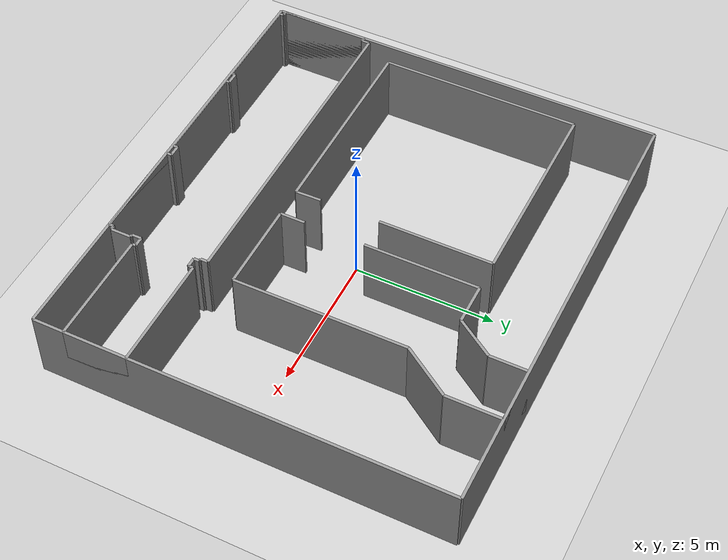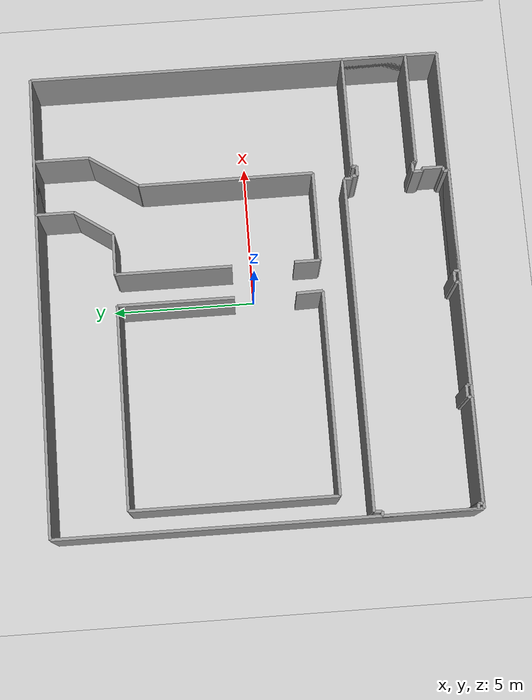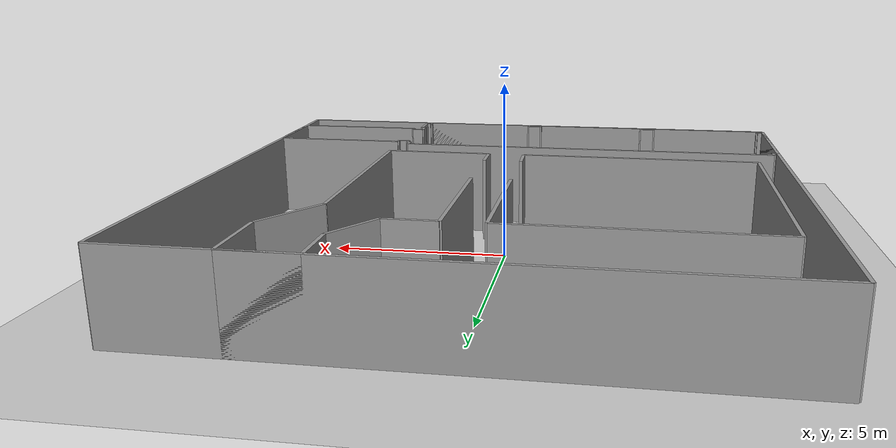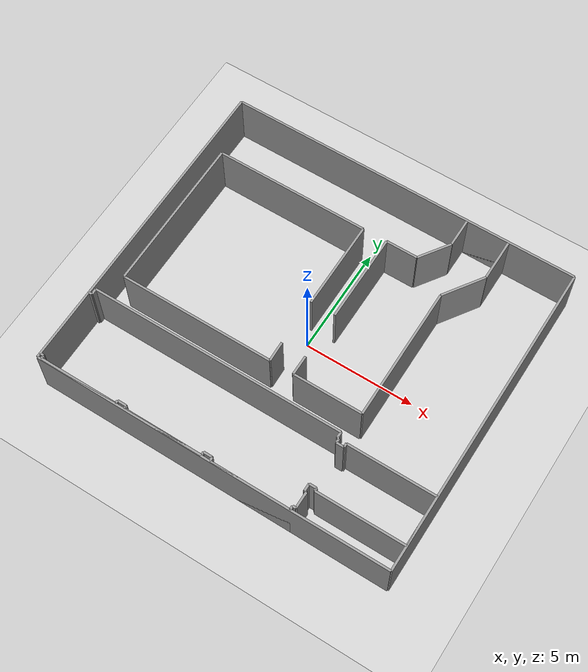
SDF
<sdf version="1.6">
  <world name="default">
    <light name="sun" type="directional">
      <cast_shadows>1</cast_shadows>
      <pose frame="">0 0 10 0 -0 0</pose>
      <diffuse>0.8 0.8 0.8 1</diffuse>
      <specular>0.1 0.1 0.1 1</specular>
      <attenuation>
        <range>1000</range>
        <constant>0.9</constant>
        <linear>0.01</linear>
        <quadratic>0.001</quadratic>
      </attenuation>
      <direction>-0.5 0.5 -1</direction>
    </light>
    <model name="ground_plane">
      <static>1</static>
      <link name="link">
        <collision name="collision">
          <geometry>
            <plane>
              <normal>0 0 1</normal>
              <size>100 100</size>
            </plane>
          </geometry>
          <surface>
            <friction>
              <ode>
                <mu>100</mu>
                <mu2>50</mu2>
              </ode>
              <torsional>
                <ode />
              </torsional>
            </friction>
            <contact>
              <ode />
            </contact>
            <bounce />
          </surface>
          <max_contacts>10</max_contacts>
        </collision>
        <visual name="visual">
          <cast_shadows>0</cast_shadows>
          <geometry>
            <plane>
              <normal>0 0 1</normal>
              <size>100 100</size>
            </plane>
          </geometry>
          <material>
            <script>
              <uri>file://media/materials/scripts/gazebo.material</uri>
              <name>Gazebo/Grey</name>
            </script>
          </material>
        </visual>
        <self_collide>0</self_collide>
        <kinematic>0</kinematic>
        <gravity>1</gravity>
      </link>
    </model>
    <gravity>0 0 -9.8</gravity>
    <magnetic_field>6e-06 2.3e-05 -4.2e-05</magnetic_field>
    <atmosphere type="adiabatic" />
    <physics default="0" name="default_physics" type="ode">
      <max_step_size>0.001</max_step_size>
      <real_time_factor>1</real_time_factor>
      <real_time_update_rate>1000</real_time_update_rate>
    </physics>
    <scene>
      <ambient>0.4 0.4 0.4 1</ambient>
      <background>0.7 0.7 0.7 1</background>
      <shadows>1</shadows>
    </scene>
    <spherical_coordinates>
      <surface_model>EARTH_WGS84</surface_model>
      <latitude_deg>0</latitude_deg>
      <longitude_deg>0</longitude_deg>
      <elevation>0</elevation>
      <heading_deg>0</heading_deg>
    </spherical_coordinates>
  <model name="0510034879_A-40">
		<static>1</static>
		<link name="Wall_0">
			<collision name="Wall_0_Collision">
				<geometry>
					<box>
						<size>7.03436895053 0.1 2.5</size>
					</box>
				</geometry>
				<pose frame="">3.51718447526 0 1.25 0 0 0</pose>
			</collision>
			<visual name="Wall_0_Visual">
				<pose frame="">3.51718447526 0 1.25 0 0 0</pose>
				<geometry>
					<box>
						<size>7.03436895053 0.1 2.5</size>
					</box>
				</geometry>
				<material>
					<script>
						<uri>file://media/materials/scripts/gazebo.material</uri>
						<name>Gazebo/Grey</name>
					</script>
					<ambient>1 1 1 1</ambient>
				</material>
			</visual>
			<pose frame="">7.79511916474 -9.71825711656 0 0 0 3.14159265359</pose>
		</link>
		<link name="Wall_1">
			<collision name="Wall_1_Collision">
				<geometry>
					<box>
						<size>7.07308558916 0.1 2.5</size>
					</box>
				</geometry>
				<pose frame="">3.53654279458 0 1.25 0 0 0</pose>
			</collision>
			<visual name="Wall_1_Visual">
				<pose frame="">3.53654279458 0 1.25 0 0 0</pose>
				<geometry>
					<box>
						<size>7.07308558916 0.1 2.5</size>
					</box>
				</geometry>
				<material>
					<script>
						<uri>file://media/materials/scripts/gazebo.material</uri>
						<name>Gazebo/Grey</name>
					</script>
					<ambient>1 1 1 1</ambient>
				</material>
			</visual>
			<pose frame="">0.760750214211 -9.71825711656 0 0 0 1.57079632679</pose>
		</link>
		<link name="Wall_2">
			<collision name="Wall_2_Collision">
				<geometry>
					<box>
						<size>7.01012344895 0.1 2.5</size>
					</box>
				</geometry>
				<pose frame="">3.50506172448 0 1.25 0 0 0</pose>
			</collision>
			<visual name="Wall_2_Visual">
				<pose frame="">3.50506172448 0 1.25 0 0 0</pose>
				<geometry>
					<box>
						<size>7.01012344895 0.1 2.5</size>
					</box>
				</geometry>
				<material>
					<script>
						<uri>file://media/materials/scripts/gazebo.material</uri>
						<name>Gazebo/Grey</name>
					</script>
					<ambient>1 1 1 1</ambient>
				</material>
			</visual>
			<pose frame="">0.760750214211 -2.6451715274 0 0 0 0.0</pose>
		</link>
		<link name="Wall_3">
			<collision name="Wall_3_Collision">
				<geometry>
					<box>
						<size>4.03414680588 0.1 2.5</size>
					</box>
				</geometry>
				<pose frame="">2.01707340294 0 1.25 0 0 0</pose>
			</collision>
			<visual name="Wall_3_Visual">
				<pose frame="">2.01707340294 0 1.25 0 0 0</pose>
				<geometry>
					<box>
						<size>4.03414680588 0.1 2.5</size>
					</box>
				</geometry>
				<material>
					<script>
						<uri>file://media/materials/scripts/gazebo.material</uri>
						<name>Gazebo/Grey</name>
					</script>
					<ambient>1 1 1 1</ambient>
				</material>
			</visual>
			<pose frame="">7.77087366317 -2.6451715274 0 0 0 -1.57079632679</pose>
		</link>
		<link name="Wall_4">
			<collision name="Wall_4_Collision">
				<geometry>
					<box>
						<size>0.906166819998 0.1 2.5</size>
					</box>
				</geometry>
				<pose frame="">0.453083409999 0 1.25 0 0 0</pose>
			</collision>
			<visual name="Wall_4_Visual">
				<pose frame="">0.453083409999 0 1.25 0 0 0</pose>
				<geometry>
					<box>
						<size>0.906166819998 0.1 2.5</size>
					</box>
				</geometry>
				<material>
					<script>
						<uri>file://media/materials/scripts/gazebo.material</uri>
						<name>Gazebo/Grey</name>
					</script>
					<ambient>1 1 1 1</ambient>
				</material>
			</visual>
			<pose frame="">7.77087366317 -8.81241471232 0 0 0 -1.54403702065</pose>
		</link>
		<link name="Wall_5">
			<collision name="Wall_5_Collision">
				<geometry>
					<box>
						<size>3.14861476945 0.1 2.5</size>
					</box>
				</geometry>
				<pose frame="">1.57430738472 0 1.25 0 0 0</pose>
			</collision>
			<visual name="Wall_5_Visual">
				<pose frame="">1.57430738472 0 1.25 0 0 0</pose>
				<geometry>
					<box>
						<size>3.14861476945 0.1 2.5</size>
					</box>
				</geometry>
				<material>
					<script>
						<uri>file://media/materials/scripts/gazebo.material</uri>
						<name>Gazebo/Grey</name>
					</script>
					<ambient>1 1 1 1</ambient>
				</material>
			</visual>
			<pose frame="">12.0308463711 -9.71368728381 0 0 0 3.14159265359</pose>
		</link>
		<link name="Wall_6">
			<collision name="Wall_6_Collision">
				<geometry>
					<box>
						<size>0.886928374219 0.1 2.5</size>
					</box>
				</geometry>
				<pose frame="">0.443464187109 0 1.25 0 0 0</pose>
			</collision>
			<visual name="Wall_6_Visual">
				<pose frame="">0.443464187109 0 1.25 0 0 0</pose>
				<geometry>
					<box>
						<size>0.886928374219 0.1 2.5</size>
					</box>
				</geometry>
				<material>
					<script>
						<uri>file://media/materials/scripts/gazebo.material</uri>
						<name>Gazebo/Grey</name>
					</script>
					<ambient>1 1 1 1</ambient>
				</material>
			</visual>
			<pose frame="">8.88223160166 -9.71368728381 0 0 0 1.57079632679</pose>
		</link>
		<link name="Wall_7">
			<collision name="Wall_7_Collision">
				<geometry>
					<box>
						<size>4.03630478246 0.1 2.5</size>
					</box>
				</geometry>
				<pose frame="">2.01815239123 0 1.25 0 0 0</pose>
			</collision>
			<visual name="Wall_7_Visual">
				<pose frame="">2.01815239123 0 1.25 0 0 0</pose>
				<geometry>
					<box>
						<size>4.03630478246 0.1 2.5</size>
					</box>
				</geometry>
				<material>
					<script>
						<uri>file://media/materials/scripts/gazebo.material</uri>
						<name>Gazebo/Grey</name>
					</script>
					<ambient>1 1 1 1</ambient>
				</material>
			</visual>
			<pose frame="">8.88223160166 -6.66573577481 0 0 0 1.57079632679</pose>
		</link>
		<link name="Wall_8">
			<collision name="Wall_8_Collision">
				<geometry>
					<box>
						<size>1.43340420805 0.1 2.5</size>
					</box>
				</geometry>
				<pose frame="">0.716702104027 0 1.25 0 0 0</pose>
			</collision>
			<visual name="Wall_8_Visual">
				<pose frame="">0.716702104027 0 1.25 0 0 0</pose>
				<geometry>
					<box>
						<size>1.43340420805 0.1 2.5</size>
					</box>
				</geometry>
				<material>
					<script>
						<uri>file://media/materials/scripts/gazebo.material</uri>
						<name>Gazebo/Grey</name>
					</script>
					<ambient>1 1 1 1</ambient>
				</material>
			</visual>
			<pose frame="">8.88223160166 -2.62943099235 0 0 0 0.0</pose>
		</link>
		<link name="Wall_9">
			<collision name="Wall_9_Collision">
				<geometry>
					<box>
						<size>1.57389491452 0.1 2.5</size>
					</box>
				</geometry>
				<pose frame="">0.786947457261 0 1.25 0 0 0</pose>
			</collision>
			<visual name="Wall_9_Visual">
				<pose frame="">0.786947457261 0 1.25 0 0 0</pose>
				<geometry>
					<box>
						<size>1.57389491452 0.1 2.5</size>
					</box>
				</geometry>
				<material>
					<script>
						<uri>file://media/materials/scripts/gazebo.material</uri>
						<name>Gazebo/Grey</name>
					</script>
					<ambient>1 1 1 1</ambient>
				</material>
			</visual>
			<pose frame="">10.3156358097 -2.62943099235 0 0 0 0.97507627362</pose>
		</link>
		<link name="Wall_10">
			<collision name="Wall_10_Collision">
				<geometry>
					<box>
						<size>1.32664783726 0.1 2.5</size>
					</box>
				</geometry>
				<pose frame="">0.663323918632 0 1.25 0 0 0</pose>
			</collision>
			<visual name="Wall_10_Visual">
				<pose frame="">0.663323918632 0 1.25 0 0 0</pose>
				<geometry>
					<box>
						<size>1.32664783726 0.1 2.5</size>
					</box>
				</geometry>
				<material>
					<script>
						<uri>file://media/materials/scripts/gazebo.material</uri>
						<name>Gazebo/Grey</name>
					</script>
					<ambient>1 1 1 1</ambient>
				</material>
			</visual>
			<pose frame="">11.19875599 -1.32664783726 0 0 0 1.57079632679</pose>
		</link>
		<link name="Wall_11">
			<collision name="Wall_11_Collision">
				<geometry>
					<box>
						<size>1.94217892165 0.1 2.5</size>
					</box>
				</geometry>
				<pose frame="">0.971089460823 0 1.25 0 0 0</pose>
			</collision>
			<visual name="Wall_11_Visual">
				<pose frame="">0.971089460823 0 1.25 0 0 0</pose>
				<geometry>
					<box>
						<size>1.94217892165 0.1 2.5</size>
					</box>
				</geometry>
				<material>
					<script>
						<uri>file://media/materials/scripts/gazebo.material</uri>
						<name>Gazebo/Grey</name>
					</script>
					<ambient>1 1 1 1</ambient>
				</material>
			</visual>
			<pose frame="">11.19875599 -0.0 0 0 0 0.0</pose>
		</link>
		<link name="Wall_12">
			<collision name="Wall_12_Collision">
				<geometry>
					<box>
						<size>1.92961188157 0.1 2.5</size>
					</box>
				</geometry>
				<pose frame="">0.964805940783 0 1.25 0 0 0</pose>
			</collision>
			<visual name="Wall_12_Visual">
				<pose frame="">0.964805940783 0 1.25 0 0 0</pose>
				<geometry>
					<box>
						<size>1.92961188157 0.1 2.5</size>
					</box>
				</geometry>
				<material>
					<script>
						<uri>file://media/materials/scripts/gazebo.material</uri>
						<name>Gazebo/Grey</name>
					</script>
					<ambient>1 1 1 1</ambient>
				</material>
			</visual>
			<pose frame="">13.1409349116 -0.0 0 0 0 -1.57079632679</pose>
		</link>
		<link name="Wall_13">
			<collision name="Wall_13_Collision">
				<geometry>
					<box>
						<size>2.03812919018 0.1 2.5</size>
					</box>
				</geometry>
				<pose frame="">1.01906459509 0 1.25 0 0 0</pose>
			</collision>
			<visual name="Wall_13_Visual">
				<pose frame="">1.01906459509 0 1.25 0 0 0</pose>
				<geometry>
					<box>
						<size>2.03812919018 0.1 2.5</size>
					</box>
				</geometry>
				<material>
					<script>
						<uri>file://media/materials/scripts/gazebo.material</uri>
						<name>Gazebo/Grey</name>
					</script>
					<ambient>1 1 1 1</ambient>
				</material>
			</visual>
			<pose frame="">13.1409349116 -1.92961188157 0 0 0 -2.1618564437</pose>
		</link>
		<link name="Wall_14">
			<collision name="Wall_14_Collision">
				<geometry>
					<box>
						<size>6.09176797147 0.1 2.5</size>
					</box>
				</geometry>
				<pose frame="">3.04588398573 0 1.25 0 0 0</pose>
			</collision>
			<visual name="Wall_14_Visual">
				<pose frame="">3.04588398573 0 1.25 0 0 0</pose>
				<geometry>
					<box>
						<size>6.09176797147 0.1 2.5</size>
					</box>
				</geometry>
				<material>
					<script>
						<uri>file://media/materials/scripts/gazebo.material</uri>
						<name>Gazebo/Grey</name>
					</script>
					<ambient>1 1 1 1</ambient>
				</material>
			</visual>
			<pose frame="">12.0052045318 -3.62197327917 0 0 0 -1.56658705369</pose>
		</link>
		<link name="Wall_15">
			<collision name="Wall_15_Collision">
				<geometry>
					<box>
						<size>3.60521722573 0.1 2.5</size>
					</box>
				</geometry>
				<pose frame="">1.80260861287 0 1.25 0 0 0</pose>
			</collision>
			<visual name="Wall_15_Visual">
				<pose frame="">1.80260861287 0 1.25 0 0 0</pose>
				<geometry>
					<box>
						<size>3.60521722573 0.1 2.5</size>
					</box>
				</geometry>
				<material>
					<script>
						<uri>file://media/materials/scripts/gazebo.material</uri>
						<name>Gazebo/Grey</name>
					</script>
					<ambient>1 1 1 1</ambient>
				</material>
			</visual>
			<pose frame="">11.7783631113 -14.4660594713 0 0 0 3.14159265359</pose>
		</link>
		<link name="Wall_16">
			<collision name="Wall_16_Collision">
				<geometry>
					<box>
						<size>0.18304718987 0.1 2.5</size>
					</box>
				</geometry>
				<pose frame="">0.0915235949351 0 1.25 0 0 0</pose>
			</collision>
			<visual name="Wall_16_Visual">
				<pose frame="">0.0915235949351 0 1.25 0 0 0</pose>
				<geometry>
					<box>
						<size>0.18304718987 0.1 2.5</size>
					</box>
				</geometry>
				<material>
					<script>
						<uri>file://media/materials/scripts/gazebo.material</uri>
						<name>Gazebo/Grey</name>
					</script>
					<ambient>1 1 1 1</ambient>
				</material>
			</visual>
			<pose frame="">8.17314588556 -14.4660594713 0 0 0 1.57079632679</pose>
		</link>
		<link name="Wall_17">
			<collision name="Wall_17_Collision">
				<geometry>
					<box>
						<size>0.405572657167 0.1 2.5</size>
					</box>
				</geometry>
				<pose frame="">0.202786328584 0 1.25 0 0 0</pose>
			</collision>
			<visual name="Wall_17_Visual">
				<pose frame="">0.202786328584 0 1.25 0 0 0</pose>
				<geometry>
					<box>
						<size>0.405572657167 0.1 2.5</size>
					</box>
				</geometry>
				<material>
					<script>
						<uri>file://media/materials/scripts/gazebo.material</uri>
						<name>Gazebo/Grey</name>
					</script>
					<ambient>1 1 1 1</ambient>
				</material>
			</visual>
			<pose frame="">8.17314588556 -14.2830122814 0 0 0 3.14159265359</pose>
		</link>
		<link name="Wall_18">
			<collision name="Wall_18_Collision">
				<geometry>
					<box>
						<size>0.157405350513 0.1 2.5</size>
					</box>
				</geometry>
				<pose frame="">0.0787026752563 0 1.25 0 0 0</pose>
			</collision>
			<visual name="Wall_18_Visual">
				<pose frame="">0.0787026752563 0 1.25 0 0 0</pose>
				<geometry>
					<box>
						<size>0.157405350513 0.1 2.5</size>
					</box>
				</geometry>
				<material>
					<script>
						<uri>file://media/materials/scripts/gazebo.material</uri>
						<name>Gazebo/Grey</name>
					</script>
					<ambient>1 1 1 1</ambient>
				</material>
			</visual>
			<pose frame="">7.7675732284 -14.2830122814 0 0 0 -1.57079632679</pose>
		</link>
		<link name="Wall_19">
			<collision name="Wall_19_Collision">
				<geometry>
					<box>
						<size>3.58389133953 0.1 2.5</size>
					</box>
				</geometry>
				<pose frame="">1.79194566977 0 1.25 0 0 0</pose>
			</collision>
			<visual name="Wall_19_Visual">
				<pose frame="">1.79194566977 0 1.25 0 0 0</pose>
				<geometry>
					<box>
						<size>3.58389133953 0.1 2.5</size>
					</box>
				</geometry>
				<material>
					<script>
						<uri>file://media/materials/scripts/gazebo.material</uri>
						<name>Gazebo/Grey</name>
					</script>
					<ambient>1 1 1 1</ambient>
				</material>
			</visual>
			<pose frame="">7.7675732284 -14.4404176319 0 0 0 3.14159265359</pose>
		</link>
		<link name="Wall_20">
			<collision name="Wall_20_Collision">
				<geometry>
					<box>
						<size>0.138364380692 0.1 2.5</size>
					</box>
				</geometry>
				<pose frame="">0.0691821903462 0 1.25 0 0 0</pose>
			</collision>
			<visual name="Wall_20_Visual">
				<pose frame="">0.0691821903462 0 1.25 0 0 0</pose>
				<geometry>
					<box>
						<size>0.138364380692 0.1 2.5</size>
					</box>
				</geometry>
				<material>
					<script>
						<uri>file://media/materials/scripts/gazebo.material</uri>
						<name>Gazebo/Grey</name>
					</script>
					<ambient>1 1 1 1</ambient>
				</material>
			</visual>
			<pose frame="">4.18368188886 -14.4404176319 0 0 0 1.57079632679</pose>
		</link>
		<link name="Wall_21">
			<collision name="Wall_21_Collision">
				<geometry>
					<box>
						<size>0.424740566786 0.1 2.5</size>
					</box>
				</geometry>
				<pose frame="">0.212370283393 0 1.25 0 0 0</pose>
			</collision>
			<visual name="Wall_21_Visual">
				<pose frame="">0.212370283393 0 1.25 0 0 0</pose>
				<geometry>
					<box>
						<size>0.424740566786 0.1 2.5</size>
					</box>
				</geometry>
				<material>
					<script>
						<uri>file://media/materials/scripts/gazebo.material</uri>
						<name>Gazebo/Grey</name>
					</script>
					<ambient>1 1 1 1</ambient>
				</material>
			</visual>
			<pose frame="">4.18368188886 -14.3020532512 0 0 0 3.14159265359</pose>
		</link>
		<link name="Wall_22">
			<collision name="Wall_22_Collision">
				<geometry>
					<box>
						<size>0.138364380692 0.1 2.5</size>
					</box>
				</geometry>
				<pose frame="">0.0691821903462 0 1.25 0 0 0</pose>
			</collision>
			<visual name="Wall_22_Visual">
				<pose frame="">0.0691821903462 0 1.25 0 0 0</pose>
				<geometry>
					<box>
						<size>0.138364380692 0.1 2.5</size>
					</box>
				</geometry>
				<material>
					<script>
						<uri>file://media/materials/scripts/gazebo.material</uri>
						<name>Gazebo/Grey</name>
					</script>
					<ambient>1 1 1 1</ambient>
				</material>
			</visual>
			<pose frame="">3.75894132208 -14.3020532512 0 0 0 -1.57079632679</pose>
		</link>
		<link name="Wall_23">
			<collision name="Wall_23_Collision">
				<geometry>
					<box>
						<size>3.58059090476 0.1 2.5</size>
					</box>
				</geometry>
				<pose frame="">1.79029545238 0 1.25 0 0 0</pose>
			</collision>
			<visual name="Wall_23_Visual">
				<pose frame="">1.79029545238 0 1.25 0 0 0</pose>
				<geometry>
					<box>
						<size>3.58059090476 0.1 2.5</size>
					</box>
				</geometry>
				<material>
					<script>
						<uri>file://media/materials/scripts/gazebo.material</uri>
						<name>Gazebo/Grey</name>
					</script>
					<ambient>1 1 1 1</ambient>
				</material>
			</visual>
			<pose frame="">3.75894132208 -14.4404176319 0 0 0 3.14159265359</pose>
		</link>
		<link name="Wall_24">
			<collision name="Wall_24_Collision">
				<geometry>
					<box>
						<size>0.152200818762 0.1 2.5</size>
					</box>
				</geometry>
				<pose frame="">0.0761004093808 0 1.25 0 0 0</pose>
			</collision>
			<visual name="Wall_24_Visual">
				<pose frame="">0.0761004093808 0 1.25 0 0 0</pose>
				<geometry>
					<box>
						<size>0.152200818762 0.1 2.5</size>
					</box>
				</geometry>
				<material>
					<script>
						<uri>file://media/materials/scripts/gazebo.material</uri>
						<name>Gazebo/Grey</name>
					</script>
					<ambient>1 1 1 1</ambient>
				</material>
			</visual>
			<pose frame="">0.178350417315 -14.4404176319 0 0 0 1.57079632679</pose>
		</link>
		<link name="Wall_25">
			<collision name="Wall_25_Collision">
				<geometry>
					<box>
						<size>0.178350417315 0.1 2.5</size>
					</box>
				</geometry>
				<pose frame="">0.0891752086573 0 1.25 0 0 0</pose>
			</collision>
			<visual name="Wall_25_Visual">
				<pose frame="">0.0891752086573 0 1.25 0 0 0</pose>
				<geometry>
					<box>
						<size>0.178350417315 0.1 2.5</size>
					</box>
				</geometry>
				<material>
					<script>
						<uri>file://media/materials/scripts/gazebo.material</uri>
						<name>Gazebo/Grey</name>
					</script>
					<ambient>1 1 1 1</ambient>
				</material>
			</visual>
			<pose frame="">0.178350417315 -14.2882168132 0 0 0 3.14159265359</pose>
		</link>
		<link name="Wall_26">
			<collision name="Wall_26_Collision">
				<geometry>
					<box>
						<size>3.2169083812 0.1 2.5</size>
					</box>
				</geometry>
				<pose frame="">1.6084541906 0 1.25 0 0 0</pose>
			</collision>
			<visual name="Wall_26_Visual">
				<pose frame="">1.6084541906 0 1.25 0 0 0</pose>
				<geometry>
					<box>
						<size>3.2169083812 0.1 2.5</size>
					</box>
				</geometry>
				<material>
					<script>
						<uri>file://media/materials/scripts/gazebo.material</uri>
						<name>Gazebo/Grey</name>
					</script>
					<ambient>1 1 1 1</ambient>
				</material>
			</visual>
			<pose frame="">0.0 -14.2882168132 0 0 0 1.57079632679</pose>
		</link>
		<link name="Wall_27">
			<collision name="Wall_27_Collision">
				<geometry>
					<box>
						<size>0.151185300371 0.1 2.5</size>
					</box>
				</geometry>
				<pose frame="">0.0755926501856 0 1.25 0 0 0</pose>
			</collision>
			<visual name="Wall_27_Visual">
				<pose frame="">0.0755926501856 0 1.25 0 0 0</pose>
				<geometry>
					<box>
						<size>0.151185300371 0.1 2.5</size>
					</box>
				</geometry>
				<material>
					<script>
						<uri>file://media/materials/scripts/gazebo.material</uri>
						<name>Gazebo/Grey</name>
					</script>
					<ambient>1 1 1 1</ambient>
				</material>
			</visual>
			<pose frame="">0.0 -11.071308432 0 0 0 0.0</pose>
		</link>
		<link name="Wall_28">
			<collision name="Wall_28_Collision">
				<geometry>
					<box>
						<size>0.27304750722 0.1 2.5</size>
					</box>
				</geometry>
				<pose frame="">0.13652375361 0 1.25 0 0 0</pose>
			</collision>
			<visual name="Wall_28_Visual">
				<pose frame="">0.13652375361 0 1.25 0 0 0</pose>
				<geometry>
					<box>
						<size>0.27304750722 0.1 2.5</size>
					</box>
				</geometry>
				<material>
					<script>
						<uri>file://media/materials/scripts/gazebo.material</uri>
						<name>Gazebo/Grey</name>
					</script>
					<ambient>1 1 1 1</ambient>
				</material>
			</visual>
			<pose frame="">0.151185300371 -11.071308432 0 0 0 1.57079632679</pose>
		</link>
		<link name="Wall_29">
			<collision name="Wall_29_Collision">
				<geometry>
					<box>
						<size>11.5923963061 0.1 2.5</size>
					</box>
				</geometry>
				<pose frame="">5.79619815303 0 1.25 0 0 0</pose>
			</collision>
			<visual name="Wall_29_Visual">
				<pose frame="">5.79619815303 0 1.25 0 0 0</pose>
				<geometry>
					<box>
						<size>11.5923963061 0.1 2.5</size>
					</box>
				</geometry>
				<material>
					<script>
						<uri>file://media/materials/scripts/gazebo.material</uri>
						<name>Gazebo/Grey</name>
					</script>
					<ambient>1 1 1 1</ambient>
				</material>
			</visual>
			<pose frame="">0.151185300371 -10.7982609248 0 0 0 0.0</pose>
		</link>
		<link name="Wall_30">
			<collision name="Wall_30_Collision">
				<geometry>
					<box>
						<size>0.26670051728 0.1 2.5</size>
					</box>
				</geometry>
				<pose frame="">0.13335025864 0 1.25 0 0 0</pose>
			</collision>
			<visual name="Wall_30_Visual">
				<pose frame="">0.13335025864 0 1.25 0 0 0</pose>
				<geometry>
					<box>
						<size>0.26670051728 0.1 2.5</size>
					</box>
				</geometry>
				<material>
					<script>
						<uri>file://media/materials/scripts/gazebo.material</uri>
						<name>Gazebo/Grey</name>
					</script>
					<ambient>1 1 1 1</ambient>
				</material>
			</visual>
			<pose frame="">11.7435816064 -10.7982609248 0 0 0 -1.57079632679</pose>
		</link>
		<link name="Wall_31">
			<collision name="Wall_31_Collision">
				<geometry>
					<box>
						<size>0.0816222906287 0.1 2.5</size>
					</box>
				</geometry>
				<pose frame="">0.0408111453143 0 1.25 0 0 0</pose>
			</collision>
			<visual name="Wall_31_Visual">
				<pose frame="">0.0408111453143 0 1.25 0 0 0</pose>
				<geometry>
					<box>
						<size>0.0816222906287 0.1 2.5</size>
					</box>
				</geometry>
				<material>
					<script>
						<uri>file://media/materials/scripts/gazebo.material</uri>
						<name>Gazebo/Grey</name>
					</script>
					<ambient>1 1 1 1</ambient>
				</material>
			</visual>
			<pose frame="">11.7435816064 -11.064961442 0 0 0 0.0</pose>
		</link>
		<link name="Wall_32">
			<collision name="Wall_32_Collision">
				<geometry>
					<box>
						<size>0.197264447336 0.1 2.5</size>
					</box>
				</geometry>
				<pose frame="">0.0986322236679 0 1.25 0 0 0</pose>
			</collision>
			<visual name="Wall_32_Visual">
				<pose frame="">0.0986322236679 0 1.25 0 0 0</pose>
				<geometry>
					<box>
						<size>0.197264447336 0.1 2.5</size>
					</box>
				</geometry>
				<material>
					<script>
						<uri>file://media/materials/scripts/gazebo.material</uri>
						<name>Gazebo/Grey</name>
					</script>
					<ambient>1 1 1 1</ambient>
				</material>
			</visual>
			<pose frame="">11.8252038971 -11.064961442 0 0 0 -1.57079632679</pose>
		</link>
		<link name="Wall_33">
			<collision name="Wall_33_Collision">
				<geometry>
					<box>
						<size>0.337405985212 0.1 2.5</size>
					</box>
				</geometry>
				<pose frame="">0.168702992606 0 1.25 0 0 0</pose>
			</collision>
			<visual name="Wall_33_Visual">
				<pose frame="">0.168702992606 0 1.25 0 0 0</pose>
				<geometry>
					<box>
						<size>0.337405985212 0.1 2.5</size>
					</box>
				</geometry>
				<material>
					<script>
						<uri>file://media/materials/scripts/gazebo.material</uri>
						<name>Gazebo/Grey</name>
					</script>
					<ambient>1 1 1 1</ambient>
				</material>
			</visual>
			<pose frame="">11.8252038971 -11.2622258894 0 0 0 0.0</pose>
		</link>
		<link name="Wall_34">
			<collision name="Wall_34_Collision">
				<geometry>
					<box>
						<size>0.171749547777 0.1 2.5</size>
					</box>
				</geometry>
				<pose frame="">0.0858747738885 0 1.25 0 0 0</pose>
			</collision>
			<visual name="Wall_34_Visual">
				<pose frame="">0.0858747738885 0 1.25 0 0 0</pose>
				<geometry>
					<box>
						<size>0.171749547777 0.1 2.5</size>
					</box>
				</geometry>
				<material>
					<script>
						<uri>file://media/materials/scripts/gazebo.material</uri>
						<name>Gazebo/Grey</name>
					</script>
					<ambient>1 1 1 1</ambient>
				</material>
			</visual>
			<pose frame="">12.1626098823 -11.2622258894 0 0 0 1.57079632679</pose>
		</link>
		<link name="Wall_35">
			<collision name="Wall_35_Collision">
				<geometry>
					<box>
						<size>3.99428770905 0.1 2.5</size>
					</box>
				</geometry>
				<pose frame="">1.99714385453 0 1.25 0 0 0</pose>
			</collision>
			<visual name="Wall_35_Visual">
				<pose frame="">1.99714385453 0 1.25 0 0 0</pose>
				<geometry>
					<box>
						<size>3.99428770905 0.1 2.5</size>
					</box>
				</geometry>
				<material>
					<script>
						<uri>file://media/materials/scripts/gazebo.material</uri>
						<name>Gazebo/Grey</name>
					</script>
					<ambient>1 1 1 1</ambient>
				</material>
			</visual>
			<pose frame="">12.1626098823 -11.0904763416 0 0 0 0.0</pose>
		</link>
		<link name="Wall_36">
			<collision name="Wall_36_Collision">
				<geometry>
					<box>
						<size>2.2540700073 0.1 2.5</size>
					</box>
				</geometry>
				<pose frame="">1.12703500365 0 1.25 0 0 0</pose>
			</collision>
			<visual name="Wall_36_Visual">
				<pose frame="">1.12703500365 0 1.25 0 0 0</pose>
				<geometry>
					<box>
						<size>2.2540700073 0.1 2.5</size>
					</box>
				</geometry>
				<material>
					<script>
						<uri>file://media/materials/scripts/gazebo.material</uri>
						<name>Gazebo/Grey</name>
					</script>
					<ambient>1 1 1 1</ambient>
				</material>
			</visual>
			<pose frame="">16.1568975913 -11.0904763416 0 0 0 -1.57079632679</pose>
		</link>
		<link name="Wall_37">
			<collision name="Wall_37_Collision">
				<geometry>
					<box>
						<size>3.98641744153 0.1 2.5</size>
					</box>
				</geometry>
				<pose frame="">1.99320872076 0 1.25 0 0 0</pose>
			</collision>
			<visual name="Wall_37_Visual">
				<pose frame="">1.99320872076 0 1.25 0 0 0</pose>
				<geometry>
					<box>
						<size>3.98641744153 0.1 2.5</size>
					</box>
				</geometry>
				<material>
					<script>
						<uri>file://media/materials/scripts/gazebo.material</uri>
						<name>Gazebo/Grey</name>
					</script>
					<ambient>1 1 1 1</ambient>
				</material>
			</visual>
			<pose frame="">16.1568975913 -13.3445463489 0 0 0 3.14159265359</pose>
		</link>
		<link name="Wall_38">
			<collision name="Wall_38_Collision">
				<geometry>
					<box>
						<size>0.126178160008 0.1 2.5</size>
					</box>
				</geometry>
				<pose frame="">0.0630890800038 0 1.25 0 0 0</pose>
			</collision>
			<visual name="Wall_38_Visual">
				<pose frame="">0.0630890800038 0 1.25 0 0 0</pose>
				<geometry>
					<box>
						<size>0.126178160008 0.1 2.5</size>
					</box>
				</geometry>
				<material>
					<script>
						<uri>file://media/materials/scripts/gazebo.material</uri>
						<name>Gazebo/Grey</name>
					</script>
					<ambient>1 1 1 1</ambient>
				</material>
			</visual>
			<pose frame="">12.1704801498 -13.3445463489 0 0 0 1.57079632679</pose>
		</link>
		<link name="Wall_39">
			<collision name="Wall_39_Collision">
				<geometry>
					<box>
						<size>0.334740249437 0.1 2.5</size>
					</box>
				</geometry>
				<pose frame="">0.167370124718 0 1.25 0 0 0</pose>
			</collision>
			<visual name="Wall_39_Visual">
				<pose frame="">0.167370124718 0 1.25 0 0 0</pose>
				<geometry>
					<box>
						<size>0.334740249437 0.1 2.5</size>
					</box>
				</geometry>
				<material>
					<script>
						<uri>file://media/materials/scripts/gazebo.material</uri>
						<name>Gazebo/Grey</name>
					</script>
					<ambient>1 1 1 1</ambient>
				</material>
			</visual>
			<pose frame="">12.1704801498 -13.2183681889 0 0 0 3.14159265359</pose>
		</link>
		<link name="Wall_40">
			<collision name="Wall_40_Collision">
				<geometry>
					<box>
						<size>0.334740249437 0.1 2.5</size>
					</box>
				</geometry>
				<pose frame="">0.167370124718 0 1.25 0 0 0</pose>
			</collision>
			<visual name="Wall_40_Visual">
				<pose frame="">0.167370124718 0 1.25 0 0 0</pose>
				<geometry>
					<box>
						<size>0.334740249437 0.1 2.5</size>
					</box>
				</geometry>
				<material>
					<script>
						<uri>file://media/materials/scripts/gazebo.material</uri>
						<name>Gazebo/Grey</name>
					</script>
					<ambient>1 1 1 1</ambient>
				</material>
			</visual>
			<pose frame="">11.8357399004 -13.2183681889 0 0 0 -1.57079632679</pose>
		</link>
		<link name="Wall_41">
			<collision name="Wall_41_Collision">
				<geometry>
					<box>
						<size>0.0933007521183 0.1 2.5</size>
					</box>
				</geometry>
				<pose frame="">0.0466503760592 0 1.25 0 0 0</pose>
			</collision>
			<visual name="Wall_41_Visual">
				<pose frame="">0.0466503760592 0 1.25 0 0 0</pose>
				<geometry>
					<box>
						<size>0.0933007521183 0.1 2.5</size>
					</box>
				</geometry>
				<material>
					<script>
						<uri>file://media/materials/scripts/gazebo.material</uri>
						<name>Gazebo/Grey</name>
					</script>
					<ambient>1 1 1 1</ambient>
				</material>
			</visual>
			<pose frame="">11.8357399004 -13.5531084383 0 0 0 0.0</pose>
		</link>
		<link name="Wall_42">
			<collision name="Wall_42_Collision">
				<geometry>
					<box>
						<size>0.735362254451 0.1 2.5</size>
					</box>
				</geometry>
				<pose frame="">0.367681127225 0 1.25 0 0 0</pose>
			</collision>
			<visual name="Wall_42_Visual">
				<pose frame="">0.367681127225 0 1.25 0 0 0</pose>
				<geometry>
					<box>
						<size>0.735362254451 0.1 2.5</size>
					</box>
				</geometry>
				<material>
					<script>
						<uri>file://media/materials/scripts/gazebo.material</uri>
						<name>Gazebo/Grey</name>
					</script>
					<ambient>1 1 1 1</ambient>
				</material>
			</visual>
			<pose frame="">11.9290406525 -13.5531084383 0 0 0 -1.57079632679</pose>
		</link>
		<link name="Wall_43">
			<collision name="Wall_43_Collision">
				<geometry>
					<box>
						<size>0.1481387452 0.1 2.5</size>
					</box>
				</geometry>
				<pose frame="">0.0740693726 0 1.25 0 0 0</pose>
			</collision>
			<visual name="Wall_43_Visual">
				<pose frame="">0.0740693726 0 1.25 0 0 0</pose>
				<geometry>
					<box>
						<size>0.1481387452 0.1 2.5</size>
					</box>
				</geometry>
				<material>
					<script>
						<uri>file://media/materials/scripts/gazebo.material</uri>
						<name>Gazebo/Grey</name>
					</script>
					<ambient>1 1 1 1</ambient>
				</material>
			</visual>
			<pose frame="">11.9290406525 -14.2884706928 0 0 0 3.14159265359</pose>
		</link>
		<link name="Wall_44">
			<collision name="Wall_44_Collision">
				<geometry>
					<box>
						<size>0.177606924814 0.1 2.5</size>
					</box>
				</geometry>
				<pose frame="">0.088803462407 0 1.25 0 0 0</pose>
			</collision>
			<visual name="Wall_44_Visual">
				<pose frame="">0.088803462407 0 1.25 0 0 0</pose>
				<geometry>
					<box>
						<size>0.177606924814 0.1 2.5</size>
					</box>
				</geometry>
				<material>
					<script>
						<uri>file://media/materials/scripts/gazebo.material</uri>
						<name>Gazebo/Grey</name>
					</script>
					<ambient>1 1 1 1</ambient>
				</material>
			</visual>
			<pose frame="">11.7809019073 -14.2884706928 0 0 0 -1.58509127867</pose>
		</link>
		<link name="Wall_45">
			<collision name="Wall_45_Collision">
				<geometry>
					<box>
						<size>14.4660594713 0.1 2.5</size>
					</box>
				</geometry>
				<pose frame="">7.23302973565 0 1.25 0 0 0</pose>
			</collision>
			<visual name="Wall_45_Visual">
				<pose frame="">7.23302973565 0 1.25 0 0 0</pose>
				<geometry>
					<box>
						<size>14.4660594713 0.1 2.5</size>
					</box>
				</geometry>
				<material>
					<script>
						<uri>file://media/materials/scripts/gazebo.material</uri>
						<name>Gazebo/Grey</name>
					</script>
					<ambient>1 1 1 1</ambient>
				</material>
			</visual>
			<pose frame="">16.1568975913 -14.4660594713 0 0 0 1.57079632679</pose>
		</link>
		<link name="Wall_46">
			<collision name="Wall_46_Collision">
				<geometry>
					<box>
						<size>16.1568975913 0.1 2.5</size>
					</box>
				</geometry>
				<pose frame="">8.07844879566 0 1.25 0 0 0</pose>
			</collision>
			<visual name="Wall_46_Visual">
				<pose frame="">8.07844879566 0 1.25 0 0 0</pose>
				<geometry>
					<box>
						<size>16.1568975913 0.1 2.5</size>
					</box>
				</geometry>
				<material>
					<script>
						<uri>file://media/materials/scripts/gazebo.material</uri>
						<name>Gazebo/Grey</name>
					</script>
					<ambient>1 1 1 1</ambient>
				</material>
			</visual>
			<pose frame="">16.1568975913 -14.4660594713 0 0 0 3.14159265359</pose>
		</link>
		<link name="Wall_47">
			<collision name="Wall_47_Collision">
				<geometry>
					<box>
						<size>14.4660594713 0.1 2.5</size>
					</box>
				</geometry>
				<pose frame="">7.23302973565 0 1.25 0 0 0</pose>
			</collision>
			<visual name="Wall_47_Visual">
				<pose frame="">7.23302973565 0 1.25 0 0 0</pose>
				<geometry>
					<box>
						<size>14.4660594713 0.1 2.5</size>
					</box>
				</geometry>
				<material>
					<script>
						<uri>file://media/materials/scripts/gazebo.material</uri>
						<name>Gazebo/Grey</name>
					</script>
					<ambient>1 1 1 1</ambient>
				</material>
			</visual>
			<pose frame="">0.0 -14.4660594713 0 0 0 1.57079632679</pose>
		</link>
		<link name="Wall_48">
			<collision name="Wall_48_Collision">
				<geometry>
					<box>
						<size>16.1568975913 0.1 2.5</size>
					</box>
				</geometry>
				<pose frame="">8.07844879566 0 1.25 0 0 0</pose>
			</collision>
			<visual name="Wall_48_Visual">
				<pose frame="">8.07844879566 0 1.25 0 0 0</pose>
				<geometry>
					<box>
						<size>16.1568975913 0.1 2.5</size>
					</box>
				</geometry>
				<material>
					<script>
						<uri>file://media/materials/scripts/gazebo.material</uri>
						<name>Gazebo/Grey</name>
					</script>
					<ambient>1 1 1 1</ambient>
				</material>
			</visual>
			<pose frame="">0.0 -0.0 0 0 0 0.0</pose>
		</link>
		<pose frame="">-8.05 7.3660594713 0 0 0 0</pose>
	</model>
</world>
</sdf>
